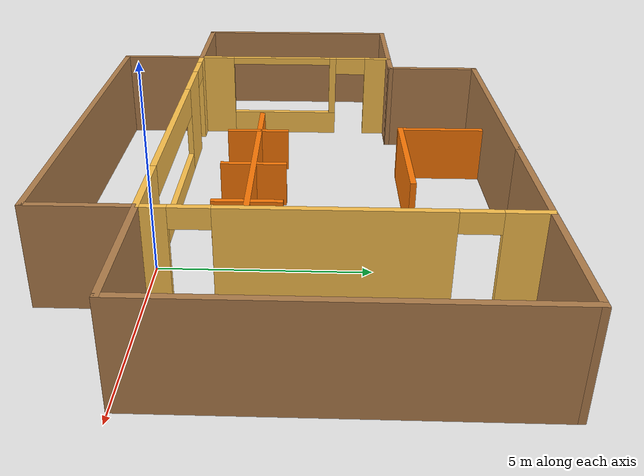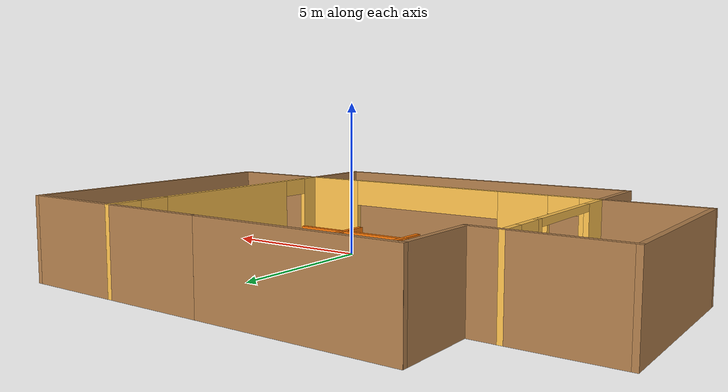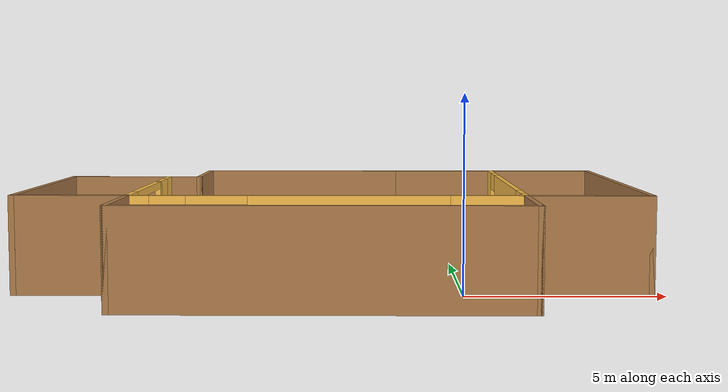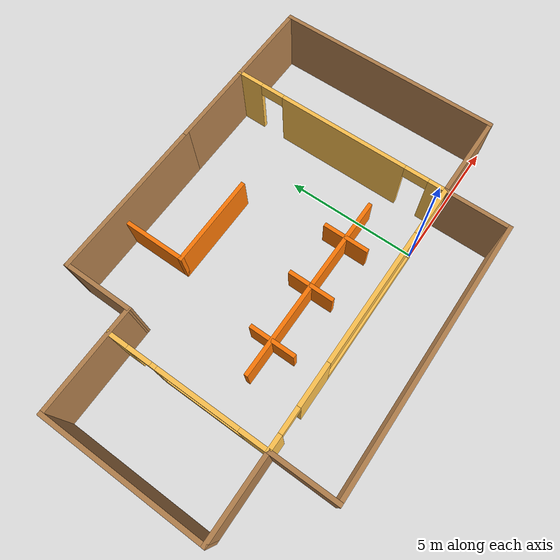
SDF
<?xml version='1.0'?>
<sdf version='1.6'>
  <model name='office_room'>
    <pose frame=''>-3.26121 3.03746 0 0 -0 0</pose>
    <link name='Wall_1'>
      <collision name='Wall_1_Collision'>
        <geometry>
          <box>
            <size>6 0.15 2.5</size>
          </box>
        </geometry>
        <pose frame=''>0 0 1.25 0 -0 0</pose>
      </collision>
      <visual name='Wall_1_Visual'>
        <pose frame=''>0 0 1.25 0 -0 0</pose>
        <geometry>
          <box>
            <size>6 0.15 2.5</size>
          </box>
        </geometry>
        <material>
          <script>
            <uri>file://media/materials/scripts/gazebo.material</uri>
            <name>Gazebo/Wood</name>
          </script>
          <ambient>0.435294 0.796078 0.67451 1</ambient>
        </material>
        <meta>
          <layer>0</layer>
        </meta>
      </visual>
      <pose frame=''>-7.89989 -0.075231 0 0 0 -1.57083</pose>
    </link>
    <link name='Wall_18'>
      <collision name='Wall_18_Collision'>
        <geometry>
          <box>
            <size>6 0.15 2.5</size>
          </box>
        </geometry>
        <pose frame=''>0 0 1.25 0 -0 0</pose>
      </collision>
      <visual name='Wall_18_Visual'>
        <pose frame=''>0 0 1.25 0 -0 0</pose>
        <geometry>
          <box>
            <size>6 0.15 2.5</size>
          </box>
        </geometry>
        <material>
          <script>
            <uri>file://media/materials/scripts/gazebo.material</uri>
            <name>Gazebo/Wood</name>
          </script>
          <ambient>0.435294 0.796078 0.67451 1</ambient>
        </material>
        <meta>
          <layer>0</layer>
        </meta>
      </visual>
      <pose frame=''>-1.225 5.35 0 0 -0 3.14159</pose>
    </link>
    <link name='Wall_2'>
      <collision name='Wall_2_Collision'>
        <geometry>
          <box>
            <size>3 0.15 2.5</size>
          </box>
        </geometry>
        <pose frame=''>0 0 1.25 0 -0 0</pose>
      </collision>
      <visual name='Wall_2_Visual'>
        <pose frame=''>0 0 1.25 0 -0 0</pose>
        <geometry>
          <box>
            <size>3 0.15 2.5</size>
          </box>
        </geometry>
        <material>
          <script>
            <uri>file://media/materials/scripts/gazebo.material</uri>
            <name>Gazebo/Wood</name>
          </script>
          <ambient>0.435294 0.796078 0.67451 1</ambient>
        </material>
        <meta>
          <layer>0</layer>
        </meta>
      </visual>
      <pose frame=''>-6.475 -3 0 0 -0 0</pose>
    </link>
    <link name='Wall_23'>
      <collision name='Wall_23_Collision'>
        <geometry>
          <box>
            <size>3.9 0.15 2.5</size>
          </box>
        </geometry>
        <pose frame=''>0 0 1.25 0 -0 0</pose>
      </collision>
      <visual name='Wall_23_Visual'>
        <pose frame=''>0 0 1.25 0 -0 0</pose>
        <geometry>
          <box>
            <size>3.9 0.15 2.5</size>
          </box>
        </geometry>
        <material>
          <script>
            <uri>file://media/materials/scripts/gazebo.material</uri>
            <name>Gazebo/Wood</name>
          </script>
          <ambient>0.435294 0.796078 0.67451 1</ambient>
        </material>
        <meta>
          <layer>0</layer>
        </meta>
      </visual>
      <pose frame=''>-6.02478 2.84954 0 0 -0 0</pose>
    </link>
    <link name='Wall_24'>
      <collision name='Wall_24_Collision'>
        <geometry>
          <box>
            <size>2.65046 0.15 2.5</size>
          </box>
        </geometry>
        <pose frame=''>0 0 1.25 0 -0 0</pose>
      </collision>
      <visual name='Wall_24_Visual'>
        <pose frame=''>0 0 1.25 0 -0 0</pose>
        <geometry>
          <box>
            <size>2.65046 0.15 2.5</size>
          </box>
        </geometry>
        <material>
          <script>
            <uri>file://media/materials/scripts/gazebo.material</uri>
            <name>Gazebo/Wood</name>
          </script>
          <ambient>0.435294 0.796078 0.67451 1</ambient>
        </material>
        <meta>
          <layer>0</layer>
        </meta>
      </visual>
      <pose frame=''>-4.14989 4.09977 0 0 -0 1.57088</pose>
    </link>
    <link name='Wall_26'>
      <pose frame=''>-5.05 -0.075003 0 0 -0 1.5708</pose>
      <visual name='Wall_26_Visual_0'>
        <pose frame=''>-2.45423 0 1.25 0 -0 0</pose>
        <geometry>
          <box>
            <size>1.09154 0.15 2.5</size>
          </box>
        </geometry>
        <material>
          <script>
            <uri>file://media/materials/scripts/gazebo.material</uri>
            <name>Gazebo/Grey</name>
          </script>
          <ambient>1 0.764706 0.305882 1</ambient>
        </material>
        <meta>
          <layer>0</layer>
        </meta>
      </visual>
      <collision name='Wall_26_Collision_0'>
        <geometry>
          <box>
            <size>1.09154 0.15 2.5</size>
          </box>
        </geometry>
        <pose frame=''>-2.45423 0 1.25 0 -0 0</pose>
      </collision>
      <visual name='Wall_26_Visual_1'>
        <pose frame=''>2.59632 0 1.25 0 -0 0</pose>
        <geometry>
          <box>
            <size>0.807355 0.15 2.5</size>
          </box>
        </geometry>
        <material>
          <script>
            <uri>file://media/materials/scripts/gazebo.material</uri>
            <name>Gazebo/Grey</name>
          </script>
          <ambient>1 0.764706 0.305882 1</ambient>
        </material>
        <meta>
          <layer>0</layer>
        </meta>
      </visual>
      <collision name='Wall_26_Collision_1'>
        <geometry>
          <box>
            <size>0.807355 0.15 2.5</size>
          </box>
        </geometry>
        <pose frame=''>2.59632 0 1.25 0 -0 0</pose>
      </collision>
      <visual name='Wall_26_Visual_2'>
        <pose frame=''>-0.307906 0 0.35 0 -0 0</pose>
        <geometry>
          <box>
            <size>3.2011 0.15 0.7</size>
          </box>
        </geometry>
        <material>
          <script>
            <uri>file://media/materials/scripts/gazebo.material</uri>
            <name>Gazebo/Grey</name>
          </script>
          <ambient>1 0.764706 0.305882 1</ambient>
        </material>
        <meta>
          <layer>0</layer>
        </meta>
      </visual>
      <collision name='Wall_26_Collision_2'>
        <geometry>
          <box>
            <size>3.2011 0.15 0.7</size>
          </box>
        </geometry>
        <pose frame=''>-0.307906 0 0.35 0 -0 0</pose>
      </collision>
      <visual name='Wall_26_Visual_3'>
        <pose frame=''>1.19209 0 1.6 0 -0 0</pose>
        <geometry>
          <box>
            <size>0.201101 0.15 1.8</size>
          </box>
        </geometry>
        <material>
          <script>
            <uri>file://media/materials/scripts/gazebo.material</uri>
            <name>Gazebo/Grey</name>
          </script>
          <ambient>1 0.764706 0.305882 1</ambient>
        </material>
        <meta>
          <layer>0</layer>
        </meta>
      </visual>
      <collision name='Wall_26_Collision_3'>
        <geometry>
          <box>
            <size>0.201101 0.15 1.8</size>
          </box>
        </geometry>
        <pose frame=''>1.19209 0 1.6 0 -0 0</pose>
      </collision>
      <visual name='Wall_26_Visual_4'>
        <pose frame=''>1.74264 0 2.25 0 -0 0</pose>
        <geometry>
          <box>
            <size>0.9 0.15 0.5</size>
          </box>
        </geometry>
        <material>
          <script>
            <uri>file://media/materials/scripts/gazebo.material</uri>
            <name>Gazebo/Grey</name>
          </script>
          <ambient>1 0.764706 0.305882 1</ambient>
        </material>
        <meta>
          <layer>0</layer>
        </meta>
      </visual>
      <collision name='Wall_26_Collision_4'>
        <geometry>
          <box>
            <size>0.9 0.15 0.5</size>
          </box>
        </geometry>
        <pose frame=''>1.74264 0 2.25 0 -0 0</pose>
      </collision>
      <visual name='Wall_26_Visual_5'>
        <pose frame=''>-0.408456 0 2.4 0 -0 0</pose>
        <geometry>
          <box>
            <size>3 0.15 0.2</size>
          </box>
        </geometry>
        <material>
          <script>
            <uri>file://media/materials/scripts/gazebo.material</uri>
            <name>Gazebo/Grey</name>
          </script>
          <ambient>1 0.764706 0.305882 1</ambient>
        </material>
        <meta>
          <layer>0</layer>
        </meta>
      </visual>
      <collision name='Wall_26_Collision_5'>
        <geometry>
          <box>
            <size>3 0.15 0.2</size>
          </box>
        </geometry>
        <pose frame=''>-0.408456 0 2.4 0 -0 0</pose>
      </collision>
    </link>
    <link name='Wall_28'>
      <pose frame=''>-0.124999 -3 0 0 -0 0</pose>
      <visual name='Wall_28_Visual_0'>
        <pose frame=''>-4.6854 0 1.25 0 -0 0</pose>
        <geometry>
          <box>
            <size>0.629202 0.15 2.5</size>
          </box>
        </geometry>
        <material>
          <script>
            <uri>file://media/materials/scripts/gazebo.material</uri>
            <name>Gazebo/Grey</name>
          </script>
          <ambient>1 0.764706 0.305882 1</ambient>
        </material>
        <meta>
          <layer>0</layer>
        </meta>
      </visual>
      <collision name='Wall_28_Collision_0'>
        <geometry>
          <box>
            <size>0.629202 0.15 2.5</size>
          </box>
        </geometry>
        <pose frame=''>-4.6854 0 1.25 0 -0 0</pose>
      </collision>
      <visual name='Wall_28_Visual_1'>
        <pose frame=''>-2.70707 0 1.25 0 -0 0</pose>
        <geometry>
          <box>
            <size>1.52746 0.15 2.5</size>
          </box>
        </geometry>
        <material>
          <script>
            <uri>file://media/materials/scripts/gazebo.material</uri>
            <name>Gazebo/Grey</name>
          </script>
          <ambient>1 0.764706 0.305882 1</ambient>
        </material>
        <meta>
          <layer>0</layer>
        </meta>
      </visual>
      <collision name='Wall_28_Collision_1'>
        <geometry>
          <box>
            <size>1.52746 0.15 2.5</size>
          </box>
        </geometry>
        <pose frame=''>-2.70707 0 1.25 0 -0 0</pose>
      </collision>
      <visual name='Wall_28_Visual_2'>
        <pose frame=''>1.52833 0 0.25 0 -0 0</pose>
        <geometry>
          <box>
            <size>6.94334 0.15 0.5</size>
          </box>
        </geometry>
        <material>
          <script>
            <uri>file://media/materials/scripts/gazebo.material</uri>
            <name>Gazebo/Grey</name>
          </script>
          <ambient>1 0.764706 0.305882 1</ambient>
        </material>
        <meta>
          <layer>0</layer>
        </meta>
      </visual>
      <collision name='Wall_28_Collision_2'>
        <geometry>
          <box>
            <size>6.94334 0.15 0.5</size>
          </box>
        </geometry>
        <pose frame=''>1.52833 0 0.25 0 -0 0</pose>
      </collision>
      <visual name='Wall_28_Visual_3'>
        <pose frame=''>4.02833 0 1.5 0 -0 0</pose>
        <geometry>
          <box>
            <size>1.94334 0.15 2</size>
          </box>
        </geometry>
        <material>
          <script>
            <uri>file://media/materials/scripts/gazebo.material</uri>
            <name>Gazebo/Grey</name>
          </script>
          <ambient>1 0.764706 0.305882 1</ambient>
        </material>
        <meta>
          <layer>0</layer>
        </meta>
      </visual>
      <collision name='Wall_28_Collision_3'>
        <geometry>
          <box>
            <size>1.94334 0.15 2</size>
          </box>
        </geometry>
        <pose frame=''>4.02833 0 1.5 0 -0 0</pose>
      </collision>
      <visual name='Wall_28_Visual_4'>
        <pose frame=''>0.556659 0 2.1 0 -0 0</pose>
        <geometry>
          <box>
            <size>5 0.15 0.8</size>
          </box>
        </geometry>
        <material>
          <script>
            <uri>file://media/materials/scripts/gazebo.material</uri>
            <name>Gazebo/Grey</name>
          </script>
          <ambient>1 0.764706 0.305882 1</ambient>
        </material>
        <meta>
          <layer>0</layer>
        </meta>
      </visual>
      <collision name='Wall_28_Collision_4'>
        <geometry>
          <box>
            <size>5 0.15 0.8</size>
          </box>
        </geometry>
        <pose frame=''>0.556659 0 2.1 0 -0 0</pose>
      </collision>
      <visual name='Wall_28_Visual_5'>
        <pose frame=''>-3.9208 0 2.25 0 -0 0</pose>
        <geometry>
          <box>
            <size>0.9 0.15 0.5</size>
          </box>
        </geometry>
        <material>
          <script>
            <uri>file://media/materials/scripts/gazebo.material</uri>
            <name>Gazebo/Grey</name>
          </script>
          <ambient>1 0.764706 0.305882 1</ambient>
        </material>
        <meta>
          <layer>0</layer>
        </meta>
      </visual>
      <collision name='Wall_28_Collision_5'>
        <geometry>
          <box>
            <size>0.9 0.15 0.5</size>
          </box>
        </geometry>
        <pose frame=''>-3.9208 0 2.25 0 -0 0</pose>
      </collision>
    </link>
    <link name='Wall_3'>
      <collision name='Wall_3_Collision'>
        <geometry>
          <box>
            <size>2.5 0.15 2.5</size>
          </box>
        </geometry>
        <pose frame=''>0 0 1.25 0 -0 0</pose>
      </collision>
      <visual name='Wall_3_Visual'>
        <pose frame=''>0 0 1.25 0 -0 0</pose>
        <geometry>
          <box>
            <size>2.5 0.15 2.5</size>
          </box>
        </geometry>
        <material>
          <script>
            <uri>file://media/materials/scripts/gazebo.material</uri>
            <name>Gazebo/Wood</name>
          </script>
          <ambient>0.435294 0.796078 0.67451 1</ambient>
        </material>
        <meta>
          <layer>0</layer>
        </meta>
      </visual>
      <pose frame=''>-5.05 -4.175 0 0 0 -1.5708</pose>
    </link>
    <link name='Wall_30'>
      <collision name='Wall_30_Collision'>
        <geometry>
          <box>
            <size>7.25 0.15 1.2</size>
          </box>
        </geometry>
        <pose frame=''>0 0 0.6 0 -0 0</pose>
      </collision>
      <visual name='Wall_30_Visual'>
        <pose frame=''>0 0 0.6 0 -0 0</pose>
        <geometry>
          <box>
            <size>7.25 0.15 1.2</size>
          </box>
        </geometry>
        <material>
          <script>
            <uri>file://media/materials/scripts/gazebo.material</uri>
            <name>Gazebo/Grey</name>
          </script>
          <ambient>0.996078 0.47451 0.0196078 1</ambient>
        </material>
        <meta>
          <layer>0</layer>
        </meta>
      </visual>
      <pose frame=''>0.011215 -1.00846 0 0 -0 0</pose>
    </link>
    <link name='Wall_32'>
      <collision name='Wall_32_Collision'>
        <geometry>
          <box>
            <size>1.75 0.15 1.2</size>
          </box>
        </geometry>
        <pose frame=''>0 0 0.6 0 -0 0</pose>
      </collision>
      <visual name='Wall_32_Visual'>
        <pose frame=''>0 0 0.6 0 -0 0</pose>
        <geometry>
          <box>
            <size>1.75 0.15 1.2</size>
          </box>
        </geometry>
        <material>
          <script>
            <uri>file://media/materials/scripts/gazebo.material</uri>
            <name>Gazebo/Grey</name>
          </script>
          <ambient>0.996078 0.47451 0.0196078 1</ambient>
        </material>
        <meta>
          <layer>0</layer>
        </meta>
      </visual>
      <pose frame=''>-2.24478 -1.04746 0 0 -0 1.5708</pose>
    </link>
    <link name='Wall_34'>
      <collision name='Wall_34_Collision'>
        <geometry>
          <box>
            <size>1.75 0.15 1.2</size>
          </box>
        </geometry>
        <pose frame=''>0 0 0.6 0 -0 0</pose>
      </collision>
      <visual name='Wall_34_Visual'>
        <pose frame=''>0 0 0.6 0 -0 0</pose>
        <geometry>
          <box>
            <size>1.75 0.15 1.2</size>
          </box>
        </geometry>
        <material>
          <script>
            <uri>file://media/materials/scripts/gazebo.material</uri>
            <name>Gazebo/Grey</name>
          </script>
          <ambient>0.996078 0.47451 0.0196078 1</ambient>
        </material>
        <meta>
          <layer>0</layer>
        </meta>
      </visual>
      <pose frame=''>-0.022785 -1.01246 0 0 -0 1.5708</pose>
    </link>
    <link name='Wall_36'>
      <collision name='Wall_36_Collision'>
        <geometry>
          <box>
            <size>1.75 0.15 1.2</size>
          </box>
        </geometry>
        <pose frame=''>0 0 0.6 0 -0 0</pose>
      </collision>
      <visual name='Wall_36_Visual'>
        <pose frame=''>0 0 0.6 0 -0 0</pose>
        <geometry>
          <box>
            <size>1.75 0.15 1.2</size>
          </box>
        </geometry>
        <material>
          <script>
            <uri>file://media/materials/scripts/gazebo.material</uri>
            <name>Gazebo/Grey</name>
          </script>
          <ambient>0.996078 0.47451 0.0196078 1</ambient>
        </material>
        <meta>
          <layer>0</layer>
        </meta>
      </visual>
      <pose frame=''>2.07621 -1.01246 0 0 -0 1.5708</pose>
    </link>
    <link name='Wall_4'>
      <collision name='Wall_4_Collision'>
        <geometry>
          <box>
            <size>10 0.15 2.5</size>
          </box>
        </geometry>
        <pose frame=''>0 0 1.25 0 -0 0</pose>
      </collision>
      <visual name='Wall_4_Visual'>
        <pose frame=''>0 0 1.25 0 -0 0</pose>
        <geometry>
          <box>
            <size>10 0.15 2.5</size>
          </box>
        </geometry>
        <material>
          <script>
            <uri>file://media/materials/scripts/gazebo.material</uri>
            <name>Gazebo/Wood</name>
          </script>
          <ambient>0.435294 0.796078 0.67451 1</ambient>
        </material>
        <meta>
          <layer>0</layer>
        </meta>
      </visual>
      <pose frame=''>-0.124999 -5.35 0 0 -0 0</pose>
    </link>
    <link name='Wall_43'>
      <pose frame=''>4.8 1.175 0 0 -0 1.5708</pose>
      <visual name='Wall_43_Visual_0'>
        <pose frame=''>-3.89641 0 1.25 0 -0 0</pose>
        <geometry>
          <box>
            <size>0.707182 0.15 2.5</size>
          </box>
        </geometry>
        <material>
          <script>
            <uri>file://media/materials/scripts/gazebo.material</uri>
            <name>Gazebo/Grey</name>
          </script>
          <ambient>1 0.764706 0.305882 1</ambient>
        </material>
        <meta>
          <layer>0</layer>
        </meta>
      </visual>
      <collision name='Wall_43_Collision_0'>
        <geometry>
          <box>
            <size>0.707182 0.15 2.5</size>
          </box>
        </geometry>
        <pose frame=''>-3.89641 0 1.25 0 -0 0</pose>
      </collision>
      <visual name='Wall_43_Visual_1'>
        <pose frame=''>-0.163233 0 1.25 0 -0 0</pose>
        <geometry>
          <box>
            <size>4.95917 0.15 2.5</size>
          </box>
        </geometry>
        <material>
          <script>
            <uri>file://media/materials/scripts/gazebo.material</uri>
            <name>Gazebo/Grey</name>
          </script>
          <ambient>1 0.764706 0.305882 1</ambient>
        </material>
        <meta>
          <layer>0</layer>
        </meta>
      </visual>
      <collision name='Wall_43_Collision_1'>
        <geometry>
          <box>
            <size>4.95917 0.15 2.5</size>
          </box>
        </geometry>
        <pose frame=''>-0.163233 0 1.25 0 -0 0</pose>
      </collision>
      <visual name='Wall_43_Visual_2'>
        <pose frame=''>3.73318 0 1.25 0 -0 0</pose>
        <geometry>
          <box>
            <size>1.03365 0.15 2.5</size>
          </box>
        </geometry>
        <material>
          <script>
            <uri>file://media/materials/scripts/gazebo.material</uri>
            <name>Gazebo/Grey</name>
          </script>
          <ambient>1 0.764706 0.305882 1</ambient>
        </material>
        <meta>
          <layer>0</layer>
        </meta>
      </visual>
      <collision name='Wall_43_Collision_2'>
        <geometry>
          <box>
            <size>1.03365 0.15 2.5</size>
          </box>
        </geometry>
        <pose frame=''>3.73318 0 1.25 0 -0 0</pose>
      </collision>
      <visual name='Wall_43_Visual_3'>
        <pose frame=''>-3.09282 0 2.25 0 -0 0</pose>
        <geometry>
          <box>
            <size>0.9 0.15 0.5</size>
          </box>
        </geometry>
        <material>
          <script>
            <uri>file://media/materials/scripts/gazebo.material</uri>
            <name>Gazebo/Grey</name>
          </script>
          <ambient>1 0.764706 0.305882 1</ambient>
        </material>
        <meta>
          <layer>0</layer>
        </meta>
      </visual>
      <collision name='Wall_43_Collision_3'>
        <geometry>
          <box>
            <size>0.9 0.15 0.5</size>
          </box>
        </geometry>
        <pose frame=''>-3.09282 0 2.25 0 -0 0</pose>
      </collision>
      <visual name='Wall_43_Visual_4'>
        <pose frame=''>2.76635 0 2.25 0 -0 0</pose>
        <geometry>
          <box>
            <size>0.9 0.15 0.5</size>
          </box>
        </geometry>
        <material>
          <script>
            <uri>file://media/materials/scripts/gazebo.material</uri>
            <name>Gazebo/Grey</name>
          </script>
          <ambient>1 0.764706 0.305882 1</ambient>
        </material>
        <meta>
          <layer>0</layer>
        </meta>
      </visual>
      <collision name='Wall_43_Collision_4'>
        <geometry>
          <box>
            <size>0.9 0.15 0.5</size>
          </box>
        </geometry>
        <pose frame=''>2.76635 0 2.25 0 -0 0</pose>
      </collision>
    </link>
    <link name='Wall_46'>
      <collision name='Wall_46_Collision'>
        <geometry>
          <box>
            <size>8.5 0.15 2.5</size>
          </box>
        </geometry>
        <pose frame=''>0 0 1.25 0 -0 0</pose>
      </collision>
      <visual name='Wall_46_Visual'>
        <pose frame=''>0 0 1.25 0 -0 0</pose>
        <geometry>
          <box>
            <size>8.5 0.15 2.5</size>
          </box>
        </geometry>
        <material>
          <script>
            <uri>file://media/materials/scripts/gazebo.material</uri>
            <name>Gazebo/Wood</name>
          </script>
          <ambient>0.435294 0.796078 0.67451 1</ambient>
        </material>
        <meta>
          <layer>0</layer>
        </meta>
      </visual>
      <pose frame=''>7.9 1.175 0 0 -0 1.5708</pose>
    </link>
    <link name='Wall_47'>
      <collision name='Wall_47_Collision'>
        <geometry>
          <box>
            <size>6.35 0.15 2.5</size>
          </box>
        </geometry>
        <pose frame=''>0 0 1.25 0 -0 0</pose>
      </collision>
      <visual name='Wall_47_Visual'>
        <pose frame=''>0 0 1.25 0 -0 0</pose>
        <geometry>
          <box>
            <size>6.35 0.15 2.5</size>
          </box>
        </geometry>
        <material>
          <script>
            <uri>file://media/materials/scripts/gazebo.material</uri>
            <name>Gazebo/Wood</name>
          </script>
          <ambient>0.435294 0.796078 0.67451 1</ambient>
        </material>
        <meta>
          <layer>0</layer>
        </meta>
      </visual>
      <pose frame=''>4.8 5.35 0 0 -0 3.14159</pose>
    </link>
    <link name='Wall_5'>
      <collision name='Wall_5_Collision'>
        <geometry>
          <box>
            <size>2.5 0.15 2.5</size>
          </box>
        </geometry>
        <pose frame=''>0 0 1.25 0 -0 0</pose>
      </collision>
      <visual name='Wall_5_Visual'>
        <pose frame=''>0 0 1.25 0 -0 0</pose>
        <geometry>
          <box>
            <size>2.5 0.15 2.5</size>
          </box>
        </geometry>
        <material>
          <script>
            <uri>file://media/materials/scripts/gazebo.material</uri>
            <name>Gazebo/Wood</name>
          </script>
          <ambient>0.435294 0.796078 0.67451 1</ambient>
        </material>
        <meta>
          <layer>0</layer>
        </meta>
      </visual>
      <pose frame=''>4.8 -4.175 0 0 -0 1.5708</pose>
    </link>
    <link name='Wall_50'>
      <collision name='Wall_50_Collision'>
        <geometry>
          <box>
            <size>2.5 0.15 1.5</size>
          </box>
        </geometry>
        <pose frame=''>0 0 0.75 0 -0 0</pose>
      </collision>
      <visual name='Wall_50_Visual'>
        <pose frame=''>0 0 0.75 0 -0 0</pose>
        <geometry>
          <box>
            <size>2.5 0.15 1.5</size>
          </box>
        </geometry>
        <material>
          <script>
            <uri>file://media/materials/scripts/gazebo.material</uri>
            <name>Gazebo/Grey</name>
          </script>
          <ambient>0.996078 0.47451 0.0196078 1</ambient>
        </material>
        <meta>
          <layer>0</layer>
        </meta>
      </visual>
      <pose frame=''>-1.77178 4.16554 0 0 0 -1.5708</pose>
    </link>
    <link name='Wall_52'>
      <collision name='Wall_52_Collision'>
        <geometry>
          <box>
            <size>3.5 0.15 1.5</size>
          </box>
        </geometry>
        <pose frame=''>0 0 0.75 0 -0 0</pose>
      </collision>
      <visual name='Wall_52_Visual'>
        <pose frame=''>0 0 0.75 0 -0 0</pose>
        <geometry>
          <box>
            <size>3.5 0.15 1.5</size>
          </box>
        </geometry>
        <material>
          <script>
            <uri>file://media/materials/scripts/gazebo.material</uri>
            <name>Gazebo/Grey</name>
          </script>
          <ambient>0.996078 0.47451 0.0196078 1</ambient>
        </material>
        <meta>
          <layer>0</layer>
        </meta>
      </visual>
      <pose frame=''>-0.096785 2.99054 0 0 -0 0</pose>
    </link>
    <link name='Wall_6'>
      <collision name='Wall_6_Collision'>
        <geometry>
          <box>
            <size>3.25 0.15 2.5</size>
          </box>
        </geometry>
        <pose frame=''>0 0 1.25 0 -0 0</pose>
      </collision>
      <visual name='Wall_6_Visual'>
        <pose frame=''>0 0 1.25 0 -0 0</pose>
        <geometry>
          <box>
            <size>3.25 0.15 2.5</size>
          </box>
        </geometry>
        <material>
          <script>
            <uri>file://media/materials/scripts/gazebo.material</uri>
            <name>Gazebo/Wood</name>
          </script>
          <ambient>0.435294 0.796078 0.67451 1</ambient>
        </material>
        <meta>
          <layer>0</layer>
        </meta>
      </visual>
      <pose frame=''>6.35 -3 0 0 -0 0</pose>
    </link>
    <static>1</static>
  </model>
</sdf>
